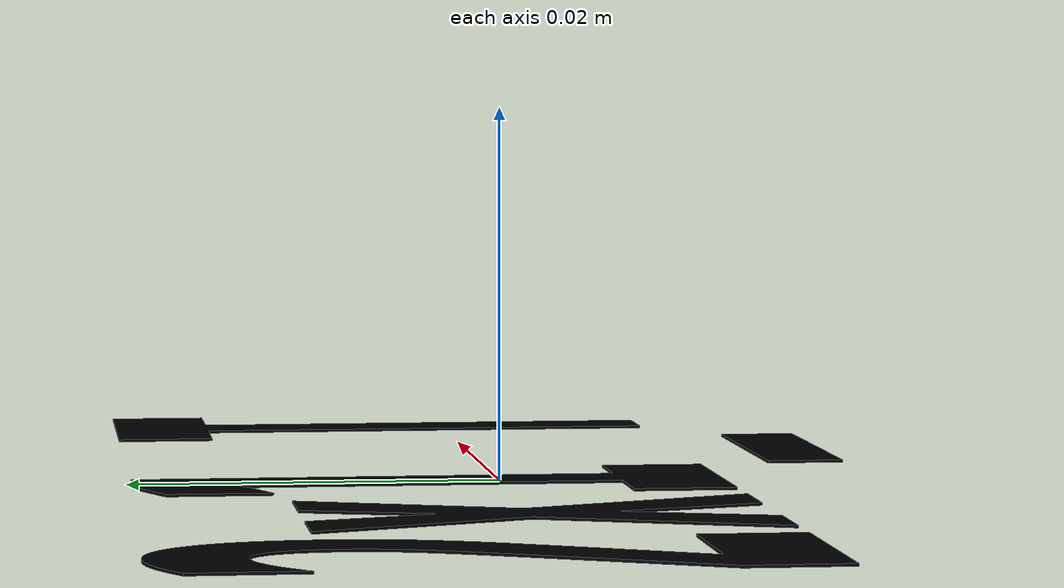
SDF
<?xml version='1.0'?>
<sdf version='1.7'>
  <model name='pad_2x1_T'>
    <link name='link'>
      <visual name='visual'>
        <geometry>
          <mesh>
            <uri>model://pad_2x1_T/mesh.stl</uri>
            <scale>0.04 0.07 0.07</scale>
          </mesh>
        </geometry>
        <material>
          <ambient>0.0 0.0 0.0 1.0</ambient>
          <diffuse>0.0 0.0 0.0 1.0</diffuse>
          <specular>0.1 0.1 0.1 1.0 5.0</specular>
        </material>
        <transparency>0</transparency>
        <cast_shadows>0</cast_shadows>
      </visual>
    </link>
    <static>1</static>
  </model>
</sdf>
